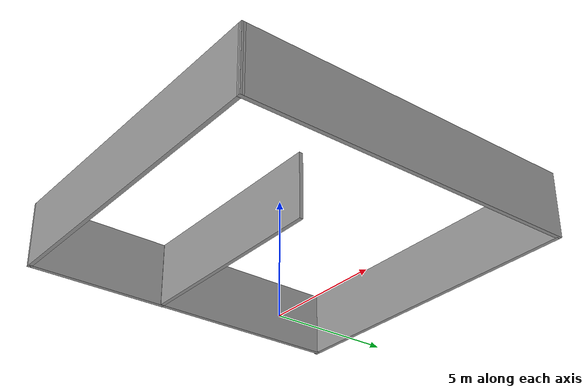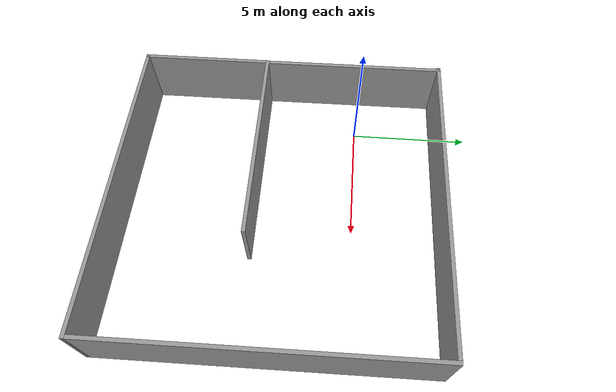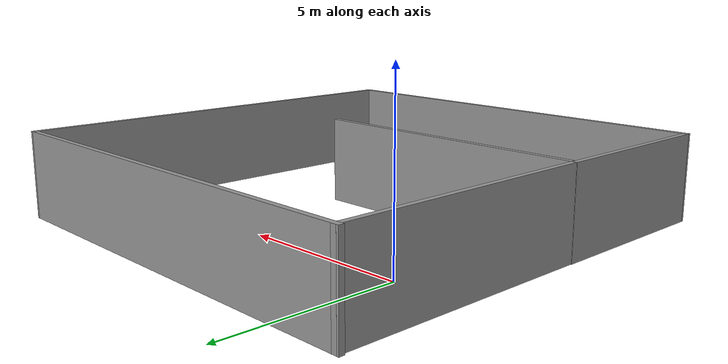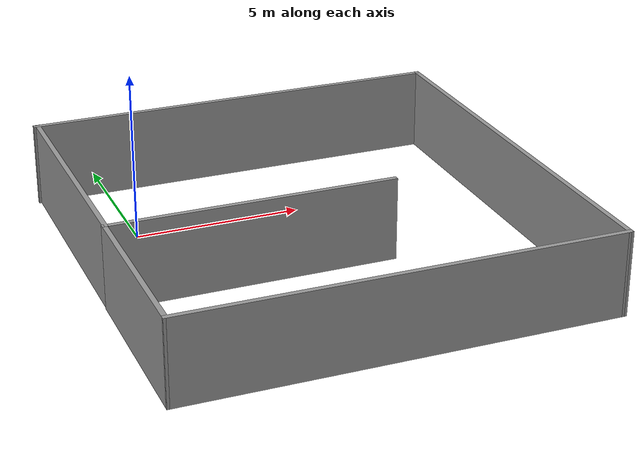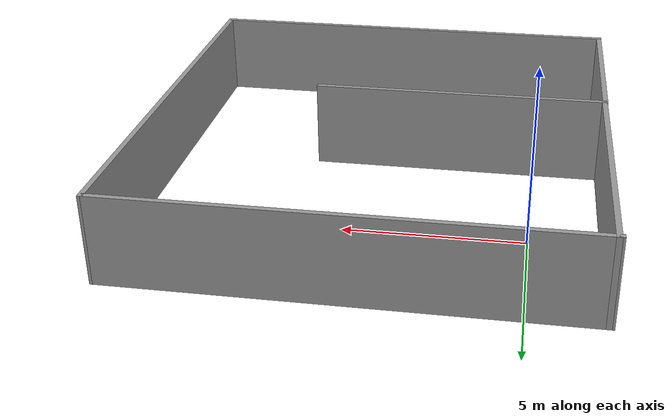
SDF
<?xml version='1.0'?>
<sdf version='1.7'>
  <model name='room22'>
    <pose>4.01371 -2.989 0 0 -0 0</pose>
    <link name='Wall_10'>
      <collision name='Wall_10_Collision'>
        <geometry>
          <box>
            <size>13.092 0.15 2.5</size>
          </box>
        </geometry>
        <pose>0 0 1.25 0 -0 0</pose>
      </collision>
      <visual name='Wall_10_Visual'>
        <pose>0 0 1.25 0 -0 0</pose>
        <geometry>
          <box>
            <size>13.092 0.15 2.5</size>
          </box>
        </geometry>
        <material>
          <script>
            <uri>file://media/materials/scripts/gazebo.material</uri>
            <name>Gazebo/Grey</name>
          </script>
          <ambient>1 1 1 1</ambient>
        </material>
        <meta>
          <layer>0</layer>
        </meta>
      </visual>
      <pose>6.62786 -0.000121 0 0 -0 -1.56842</pose>
    </link>
    <link name='Wall_11'>
      <collision name='Wall_11_Collision'>
        <geometry>
          <box>
            <size>12.7792 0.15 2.5</size>
          </box>
        </geometry>
        <pose>0 0 1.25 0 -0 0</pose>
      </collision>
      <visual name='Wall_11_Visual'>
        <pose>0 0 1.25 0 -0 0</pose>
        <geometry>
          <box>
            <size>12.7792 0.15 2.5</size>
          </box>
        </geometry>
        <material>
          <script>
            <uri>file://media/materials/scripts/gazebo.material</uri>
            <name>Gazebo/Grey</name>
          </script>
          <ambient>1 1 1 1</ambient>
        </material>
        <meta>
          <layer>0</layer>
        </meta>
      </visual>
      <pose>0.328708 -6.44116 0 0 -0 3.13685</pose>
    </link>
    <link name='Wall_12'>
      <collision name='Wall_12_Collision'>
        <geometry>
          <box>
            <size>5.5 0.15 2.5</size>
          </box>
        </geometry>
        <pose>0 0 1.25 0 -0 0</pose>
      </collision>
      <visual name='Wall_12_Visual'>
        <pose>0 0 1.25 0 -0 0</pose>
        <geometry>
          <box>
            <size>5.5 0.15 2.5</size>
          </box>
        </geometry>
        <material>
          <script>
            <uri>file://media/materials/scripts/gazebo.material</uri>
            <name>Gazebo/Grey</name>
          </script>
          <ambient>1 1 1 1</ambient>
        </material>
        <meta>
          <layer>0</layer>
        </meta>
      </visual>
      <pose>-5.98583 -3.73623 0 0 -0 1.5708</pose>
    </link>
    <link name='Wall_5'>
      <collision name='Wall_5_Collision'>
        <geometry>
          <box>
            <size>7.68291 0.15 2.5</size>
          </box>
        </geometry>
        <pose>0 0 1.25 0 -0 0</pose>
      </collision>
      <visual name='Wall_5_Visual'>
        <pose>0 0 1.25 0 -0 0</pose>
        <geometry>
          <box>
            <size>7.68291 0.15 2.5</size>
          </box>
        </geometry>
        <material>
          <script>
            <uri>file://media/materials/scripts/gazebo.material</uri>
            <name>Gazebo/Grey</name>
          </script>
          <ambient>1 1 1 1</ambient>
        </material>
        <meta>
          <layer>0</layer>
        </meta>
      </visual>
      <pose>-5.97776 2.70481 0 0 -0 -1.5682</pose>
    </link>
    <link name='Wall_7'>
      <collision name='Wall_7_Collision'>
        <geometry>
          <box>
            <size>8.5 0.15 2.5</size>
          </box>
        </geometry>
        <pose>0 0 1.25 0 -0 0</pose>
      </collision>
      <visual name='Wall_7_Visual'>
        <pose>0 0 1.25 0 -0 0</pose>
        <geometry>
          <box>
            <size>8.5 0.15 2.5</size>
          </box>
        </geometry>
        <material>
          <script>
            <uri>file://media/materials/scripts/gazebo.material</uri>
            <name>Gazebo/Grey</name>
          </script>
          <ambient>1 1 1 1</ambient>
        </material>
        <meta>
          <layer>0</layer>
        </meta>
      </visual>
      <pose>-1.81083 -1.06123 0 0 -0 0</pose>
    </link>
    <link name='Wall_9'>
      <collision name='Wall_9_Collision'>
        <geometry>
          <box>
            <size>12.75 0.15 2.5</size>
          </box>
        </geometry>
        <pose>0 0 1.25 0 -0 0</pose>
      </collision>
      <visual name='Wall_9_Visual'>
        <pose>0 0 1.25 0 -0 0</pose>
        <geometry>
          <box>
            <size>12.75 0.15 2.5</size>
          </box>
        </geometry>
        <material>
          <script>
            <uri>file://media/materials/scripts/gazebo.material</uri>
            <name>Gazebo/Grey</name>
          </script>
          <ambient>1 1 1 1</ambient>
        </material>
        <meta>
          <layer>0</layer>
        </meta>
      </visual>
      <pose>0.250951 6.47085 0 0 -0 0</pose>
    </link>
    <static>1</static>
  </model>
</sdf>
